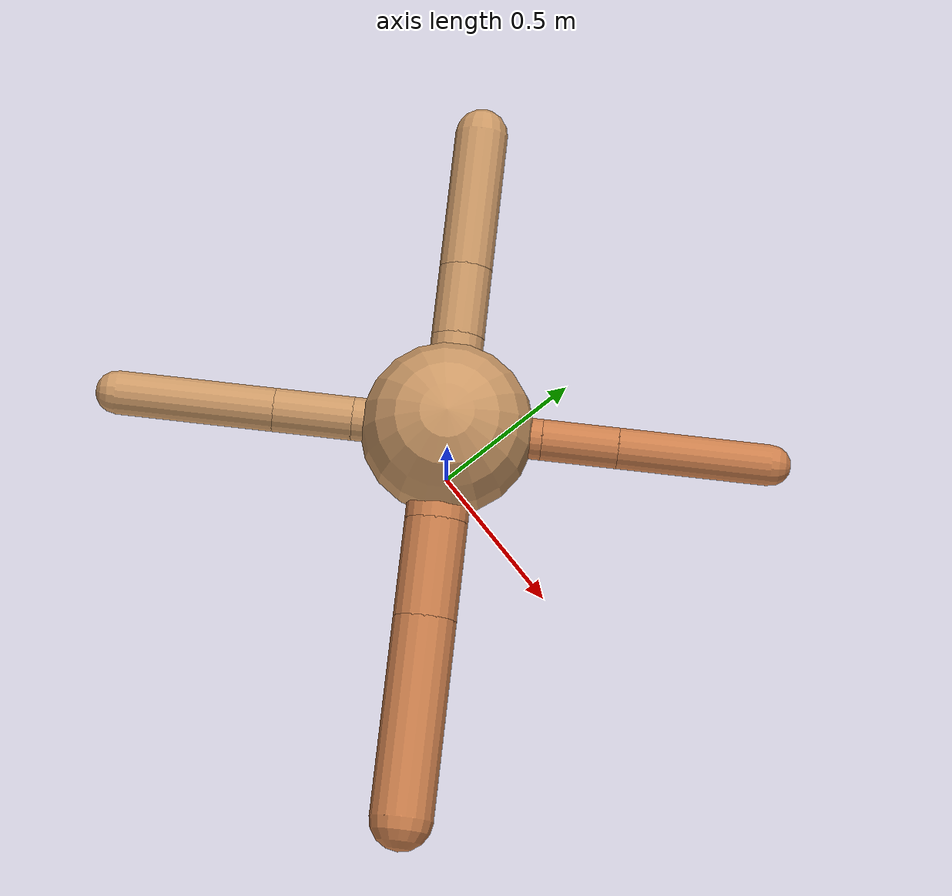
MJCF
<?xml version="1.0" ?>
<mujoco model="ant">

	<compiler angle="degree" coordinate="local" inertiafromgeom="true"/>

	<option integrator="RK4" timestep="0.01"/>

	<custom>

		<numeric data="0.0 0.0 0.55 1.0 0.0 0.0 0.0 0.0 1.0 0.0 -1.0 0.0 -1.0 0.0 1.0" name="init_qpos"/>

	</custom>

	<default>

		<joint armature="1" damping="1" limited="true"/>

		<geom conaffinity="0" condim="3" density="5.0" friction="1.5 0.1 0.1" margin="0.01" rgba="0.8 0.6 0.4 1"/>

	</default>

	<worldbody>

		<body name="torso" pos="0 0 0.75">

			<geom name="torso_geom" pos="0 0 0" size="0.2604014274837628" type="sphere"/>

			<!--joint armature="0" damping="0" limited="false" margin="0.01" name="root" pos="0 0 0" type="free"/-->

			<body name="front_left_leg" pos="0 0 0">

				<geom fromto="0 0 0 0.2 0.2 0" name="aux_1_geom" size="0.06154423419324649" type="capsule" rgba=".8 .5 .3 1"/>

				<body name="aux_1" pos="0.2 0.2 0">

					<joint axis="0 0 1" name="hip_1" pos="0.0 0.0 0.0" range="-40 40" type="hinge"/>

					<geom fromto="0 0 0 0.16127738681422657 0.16127738681422657 0" name="left_leg_geom" size="0.06154423419324649" type="capsule" rgba=".8 .5 .3 1"/>

					<body pos="0.16127738681422657 0.16127738681422657 0" name="front_left_foot">

						<joint axis="-1 1 0" name="ankle_1" pos="0.0 0.0 0.0" range="30 100" type="hinge"/>

						<geom fromto="0 0 0 0.32255477362845314 0.32255477362845314 0" name="left_ankle_geom" size="0.06154423419324649" type="capsule" rgba=".8 .5 .3 1"/>

					</body>

				</body>

			</body>

			<body name="front_right_leg" pos="0 0 0">

				<geom fromto="0 0 0 -0.2 0.2 0" name="aux_2_geom" size="0.08044309862541944" type="capsule"/>

				<body name="aux_2" pos="-0.2 0.2 0">

					<joint axis="0 0 1" name="hip_2" pos="0.0 0.0 0.0" range="-40 40" type="hinge"/>

					<geom fromto="0 0 0 -0.1515157474420522 0.1515157474420522 0" name="right_leg_geom" size="0.08044309862541944" type="capsule"/>

					<body pos="-0.1515157474420522 0.1515157474420522 0" name="front_right_foot">

						<joint axis="1 1 0" name="ankle_2" pos="0.0 0.0 0.0" range="-100 -30" type="hinge"/>

						<geom fromto="0 0 0 -0.3030314948841044 0.3030314948841044 0" name="right_ankle_geom" size="0.08044309862541944" type="capsule"/>

					</body>

				</body>

			</body>

			<body name="left_back_leg" pos="0 0 0">

				<geom fromto="0 0 0 -0.2 -0.2 0" name="aux_3_geom" size="0.06551973651224578" type="capsule"/>

				<body name="aux_3" pos="-0.2 -0.2 0">

					<joint axis="0 0 1" name="hip_3" pos="0.0 0.0 0.0" range="-40 40" type="hinge"/>

					<geom fromto="0 0 0 -0.16715574517178125 -0.16715574517178125 0" name="back_leg_geom" size="0.06551973651224578" type="capsule"/>

					<body pos="-0.16715574517178125 -0.16715574517178125 0" name="left_back_foot">

						<joint axis="-1 1 0" name="ankle_3" pos="0.0 0.0 0.0" range="-100 -30" type="hinge"/>

						<geom fromto="0 0 0 -0.3343114903435625 -0.3343114903435625 0" name="third_ankle_geom" size="0.06551973651224578" type="capsule"/>

					</body>

				</body>

			</body>

			<body name="right_back_leg" pos="0 0 0">

				<geom fromto="0 0 0 0.2 -0.2 0" name="aux_4_geom" size="0.0950479736948239" type="capsule" rgba=".8 .5 .3 1"/>

				<body name="aux_4" pos="0.2 -0.2 0">

					<joint axis="0 0 1" name="hip_4" pos="0.0 0.0 0.0" range="-40 40" type="hinge"/>

					<geom fromto="0 0 0 0.20795508656736883 -0.20795508656736883 0" name="rightback_leg_geom" size="0.0950479736948239" type="capsule" rgba=".8 .5 .3 1"/>

					<body pos="0.20795508656736883 -0.20795508656736883 0" name="right_back_foot">

						<joint axis="1 1 0" name="ankle_4" pos="0.0 0.0 0.0" range="30 100" type="hinge"/>

						<geom fromto="0 0 0 0.41591017313473766 -0.41591017313473766 0" name="fourth_ankle_geom" size="0.0950479736948239" type="capsule" rgba=".8 .5 .3 1"/>

					</body>

				</body>

			</body>

		</body>

	</worldbody>

	<actuator>

		<motor ctrllimited="true" ctrlrange="-1.0 1.0" joint="hip_4" gear="150"/>

		<motor ctrllimited="true" ctrlrange="-1.0 1.0" joint="ankle_4" gear="150"/>

		<motor ctrllimited="true" ctrlrange="-1.0 1.0" joint="hip_1" gear="150"/>

		<motor ctrllimited="true" ctrlrange="-1.0 1.0" joint="ankle_1" gear="150"/>

		<motor ctrllimited="true" ctrlrange="-1.0 1.0" joint="hip_2" gear="150"/>

		<motor ctrllimited="true" ctrlrange="-1.0 1.0" joint="ankle_2" gear="150"/>

		<motor ctrllimited="true" ctrlrange="-1.0 1.0" joint="hip_3" gear="150"/>

		<motor ctrllimited="true" ctrlrange="-1.0 1.0" joint="ankle_3" gear="150"/>

	</actuator>

</mujoco>
